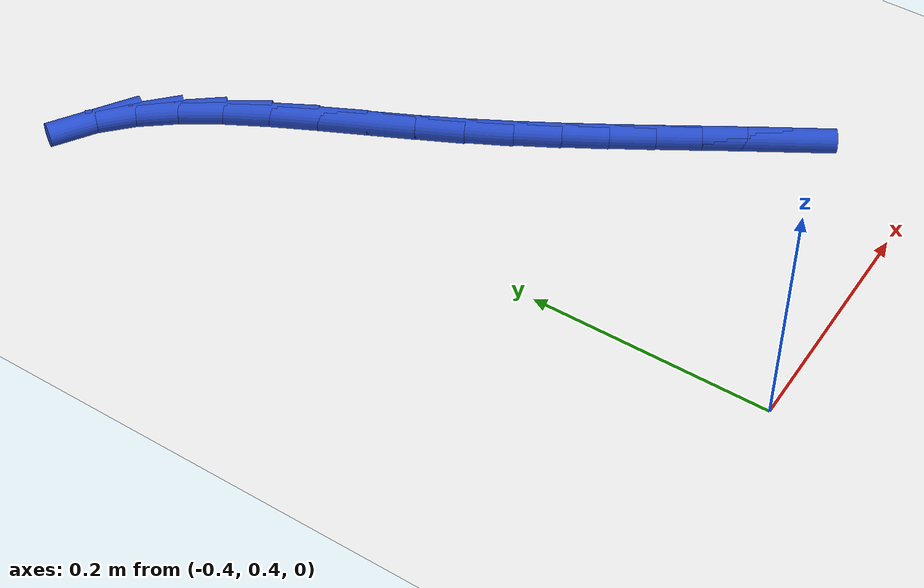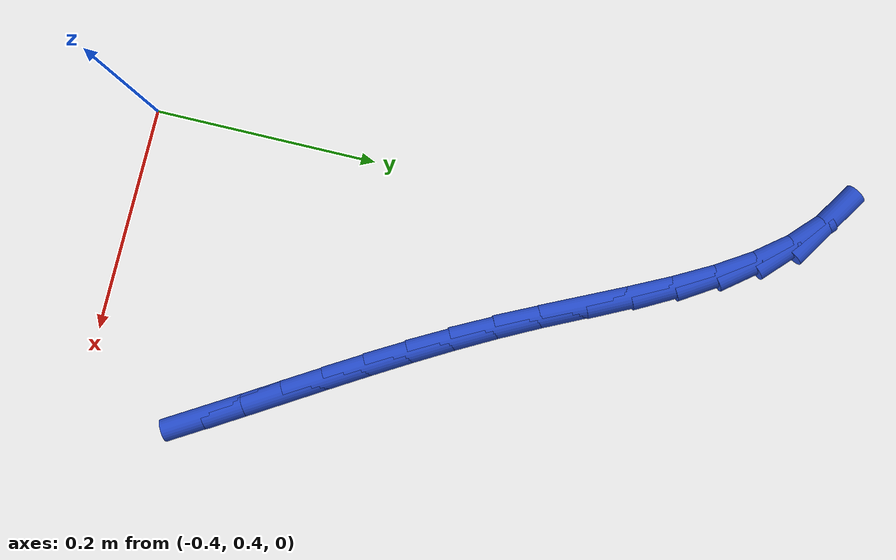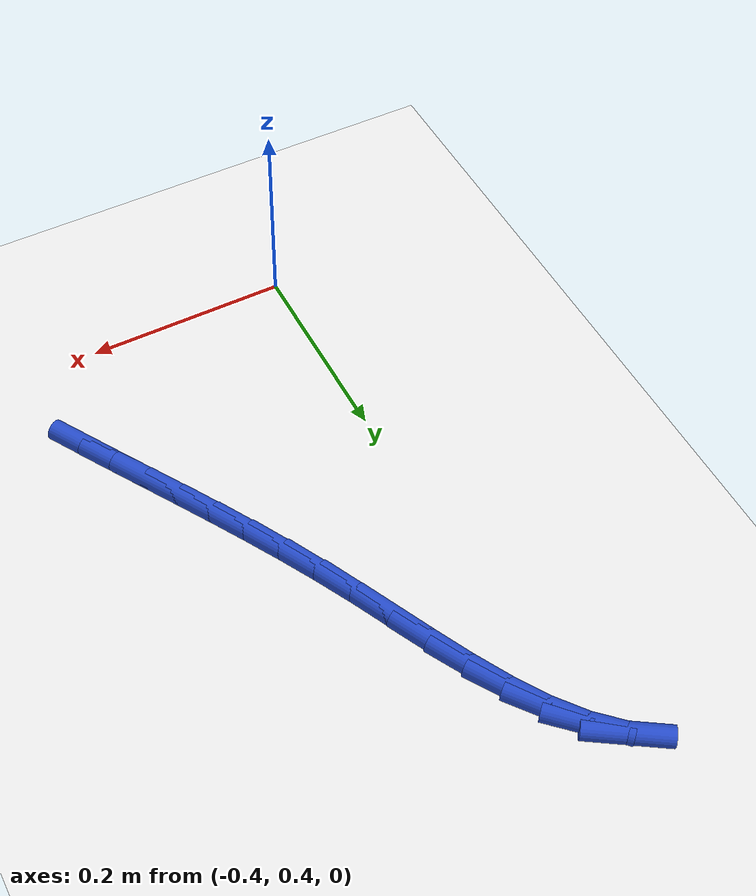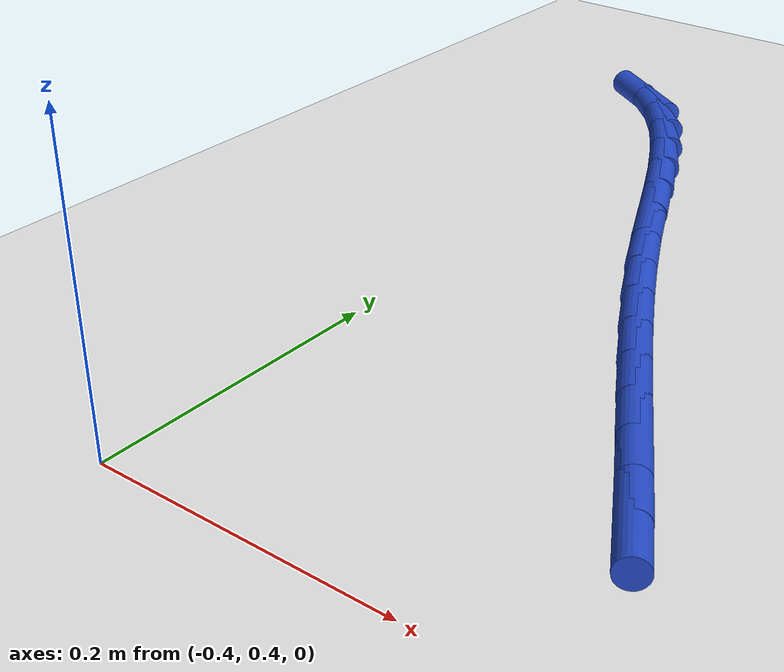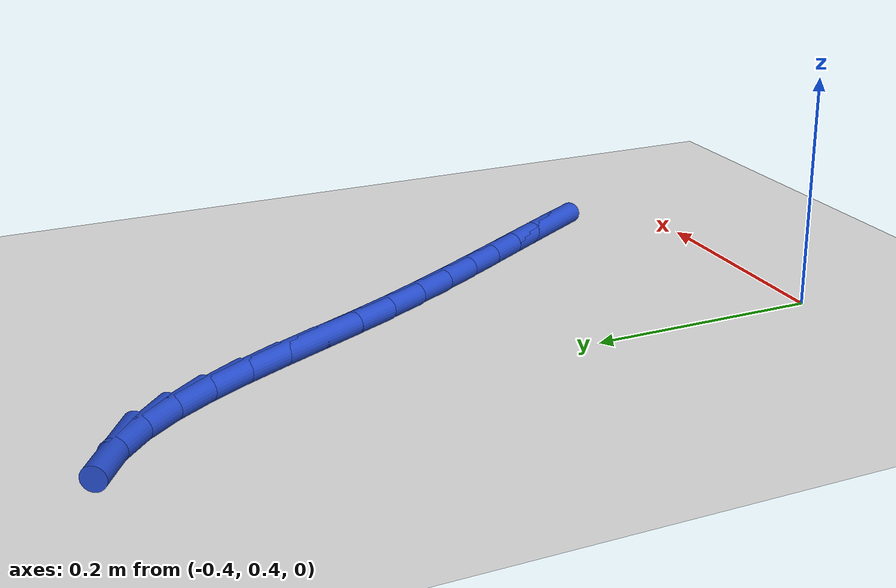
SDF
<sdf version="1.6">
 <world name="default">
  <model name="ground_plane">
   <static>1</static>
   <link name="link">
    <collision name="collision">
     <geometry><plane><normal>0 0 1</normal><size>100 100</size></plane></geometry>
     <surface><friction><ode><mu>100</mu><mu2>50</mu2></ode></friction></surface>
    </collision>
    <visual name="visual">
     <cast_shadows>0</cast_shadows>
     <geometry><plane><normal>0 0 1</normal><size>100 100</size></plane></geometry>
     <material>
      <script><uri>file://media/materials/scripts/gazebo.material</uri><name>Gazebo/WhiteGlow</name></script>
     </material>
    </visual>
   </link>
  </model>
  <model name="line">
   <link name="link_15">
    <pose>-0.14859204819393923 0.5143569082836784 0.01 0 1.57 -1.0289011906888796</pose>
    <collision name="collision">
     <geometry><cylinder><radius>0.01</radius><length>0.08</length></cylinder></geometry>
    </collision>
    <visual name="visual">
     <material>
      <script><name>Gazebo/Blue</name><uri>file://media/materials/scripts/gazebo.material</uri></script>
     </material>
     <geometry><cylinder><radius>0.01</radius><length>0.08</length></cylinder></geometry>
    </visual>
   </link>
   <link name="link_16">
    <pose>-0.167120528505126 0.5451346728175449 0.01 0 1.57 -1.0220781069457552</pose>
    <collision name="collision">
     <geometry><cylinder><radius>0.01</radius><length>0.08</length></cylinder></geometry>
    </collision>
    <visual name="visual">
     <material>
      <script><name>Gazebo/Blue</name><uri>file://media/materials/scripts/gazebo.material</uri></script>
     </material>
     <geometry><cylinder><radius>0.01</radius><length>0.08</length></cylinder></geometry>
    </visual>
   </link>
   <link name="link_17">
    <pose>-0.1860422553246907 0.5760857540728955 0.01 0 1.57 -1.0211251269234725</pose>
    <collision name="collision">
     <geometry><cylinder><radius>0.01</radius><length>0.08</length></cylinder></geometry>
    </collision>
    <visual name="visual">
     <material>
      <script><name>Gazebo/Blue</name><uri>file://media/materials/scripts/gazebo.material</uri></script>
     </material>
     <geometry><cylinder><radius>0.01</radius><length>0.08</length></cylinder></geometry>
    </visual>
   </link>
   <link name="link_18">
    <pose>-0.20520576298078566 0.6073653046540255 0.01 0 1.57 -1.0258537774800243</pose>
    <collision name="collision">
     <geometry><cylinder><radius>0.01</radius><length>0.08</length></cylinder></geometry>
    </collision>
    <visual name="visual">
     <material>
      <script><name>Gazebo/Blue</name><uri>file://media/materials/scripts/gazebo.material</uri></script>
     </material>
     <geometry><cylinder><radius>0.01</radius><length>0.08</length></cylinder></geometry>
    </visual>
   </link>
   <link name="link_19">
    <pose>-0.22445958580156314 0.6391284771652304 0.01 0 1.57 -1.0360350032534396</pose>
    <collision name="collision">
     <geometry><cylinder><radius>0.01</radius><length>0.08</length></cylinder></geometry>
    </collision>
    <visual name="visual">
     <material>
      <script><name>Gazebo/Blue</name><uri>file://media/materials/scripts/gazebo.material</uri></script>
     </material>
     <geometry><cylinder><radius>0.01</radius><length>0.08</length></cylinder></geometry>
    </visual>
   </link>
   <link name="link_20">
    <pose>-0.24365225811517563 0.6715304242108057 0.01 0 1.57 -1.0514007854879697</pose>
    <collision name="collision">
     <geometry><cylinder><radius>0.01</radius><length>0.08</length></cylinder></geometry>
    </collision>
    <visual name="visual">
     <material>
      <script><name>Gazebo/Blue</name><uri>file://media/materials/scripts/gazebo.material</uri></script>
     </material>
     <geometry><cylinder><radius>0.01</radius><length>0.08</length></cylinder></geometry>
    </visual>
   </link>
   <link name="link_21">
    <pose>-0.2626323142497753 0.7047262983950466 0.01 0 1.57 -1.0716425218081818</pose>
    <collision name="collision">
     <geometry><cylinder><radius>0.01</radius><length>0.08</length></cylinder></geometry>
    </collision>
    <visual name="visual">
     <material>
      <script><name>Gazebo/Blue</name><uri>file://media/materials/scripts/gazebo.material</uri></script>
     </material>
     <geometry><cylinder><radius>0.01</radius><length>0.08</length></cylinder></geometry>
    </visual>
   </link>
   <link name="link_22">
    <pose>-0.2812482885335147 0.7388712523222489 0.01 0 1.57 -1.096407815746498</pose>
    <collision name="collision">
     <geometry><cylinder><radius>0.01</radius><length>0.08</length></cylinder></geometry>
    </collision>
    <visual name="visual">
     <material>
      <script><name>Gazebo/Blue</name><uri>file://media/materials/scripts/gazebo.material</uri></script>
     </material>
     <geometry><cylinder><radius>0.01</radius><length>0.08</length></cylinder></geometry>
    </visual>
   </link>
   <link name="link_23">
    <pose>-0.29934871539332547 0.7741204384223458 0.01 0 1.57 -1.1206845722338363</pose>
    <collision name="collision">
     <geometry><cylinder><radius>0.01</radius><length>0.08</length></cylinder></geometry>
    </collision>
    <visual name="visual">
     <material>
      <script><name>Gazebo/Blue</name><uri>file://media/materials/scripts/gazebo.material</uri></script>
     </material>
     <geometry><cylinder><radius>0.01</radius><length>0.08</length></cylinder></geometry>
    </visual>
   </link>
   <link name="link_24">
    <pose>-0.3168939900372159 0.8104315565579233 0.01 0 1.57 -1.1269585407032419</pose>
    <collision name="collision">
     <geometry><cylinder><radius>0.01</radius><length>0.08</length></cylinder></geometry>
    </collision>
    <visual name="visual">
     <material>
      <script><name>Gazebo/Blue</name><uri>file://media/materials/scripts/gazebo.material</uri></script>
     </material>
     <geometry><cylinder><radius>0.01</radius><length>0.08</length></cylinder></geometry>
    </visual>
   </link>
   <link name="link_25">
    <pose>-0.3342791364063857 0.8469951158175936 0.01 0 1.57 -1.1112781385612371</pose>
    <collision name="collision">
     <geometry><cylinder><radius>0.01</radius><length>0.08</length></cylinder></geometry>
    </collision>
    <visual name="visual">
     <material>
      <script><name>Gazebo/Blue</name><uri>file://media/materials/scripts/gazebo.material</uri></script>
     </material>
     <geometry><cylinder><radius>0.01</radius><length>0.08</length></cylinder></geometry>
    </visual>
   </link>
   <link name="link_26">
    <pose>-0.35200472325983595 0.8828153214304328 0.01 0 1.57 -1.0719714859968976</pose>
    <collision name="collision">
     <geometry><cylinder><radius>0.01</radius><length>0.08</length></cylinder></geometry>
    </collision>
    <visual name="visual">
     <material>
      <script><name>Gazebo/Blue</name><uri>file://media/materials/scripts/gazebo.material</uri></script>
     </material>
     <geometry><cylinder><radius>0.01</radius><length>0.08</length></cylinder></geometry>
    </visual>
   </link>
   <link name="link_27">
    <pose>-0.3705713193565679 0.9168963786255176 0.01 0 1.57 -1.0049611914783525</pose>
    <collision name="collision">
     <geometry><cylinder><radius>0.01</radius><length>0.08</length></cylinder></geometry>
    </collision>
    <visual name="visual">
     <material>
      <script><name>Gazebo/Blue</name><uri>file://media/materials/scripts/gazebo.material</uri></script>
     </material>
     <geometry><cylinder><radius>0.01</radius><length>0.08</length></cylinder></geometry>
    </visual>
   </link>
   <link name="link_28">
    <pose>-0.39047949345558297 0.9482424926319253 0.01 0 1.57 -0.9036521543529622</pose>
    <collision name="collision">
     <geometry><cylinder><radius>0.01</radius><length>0.08</length></cylinder></geometry>
    </collision>
    <visual name="visual">
     <material>
      <script><name>Gazebo/Blue</name><uri>file://media/materials/scripts/gazebo.material</uri></script>
     </material>
     <geometry><cylinder><radius>0.01</radius><length>0.08</length></cylinder></geometry>
    </visual>
   </link>
   <link name="link_29">
    <pose>-0.41222981431588235 0.975857868678732 0.01 0 1.57 -0.7597727631736094</pose>
    <collision name="collision">
     <geometry><cylinder><radius>0.01</radius><length>0.08</length></cylinder></geometry>
    </collision>
    <visual name="visual">
     <material>
      <script><name>Gazebo/Blue</name><uri>file://media/materials/scripts/gazebo.material</uri></script>
     </material>
     <geometry><cylinder><radius>0.01</radius><length>0.08</length></cylinder></geometry>
    </visual>
   </link>
   <link name="link_30">
    <pose>-0.436322850696467 0.9987467119950144 0.01 0 1.57 -0.5673966069939078</pose>
    <collision name="collision">
     <geometry><cylinder><radius>0.01</radius><length>0.08</length></cylinder></geometry>
    </collision>
    <visual name="visual">
     <material>
      <script><name>Gazebo/Blue</name><uri>file://media/materials/scripts/gazebo.material</uri></script>
     </material>
     <geometry><cylinder><radius>0.01</radius><length>0.08</length></cylinder></geometry>
    </visual>
   </link>
  </model>
 </world>
</sdf>
